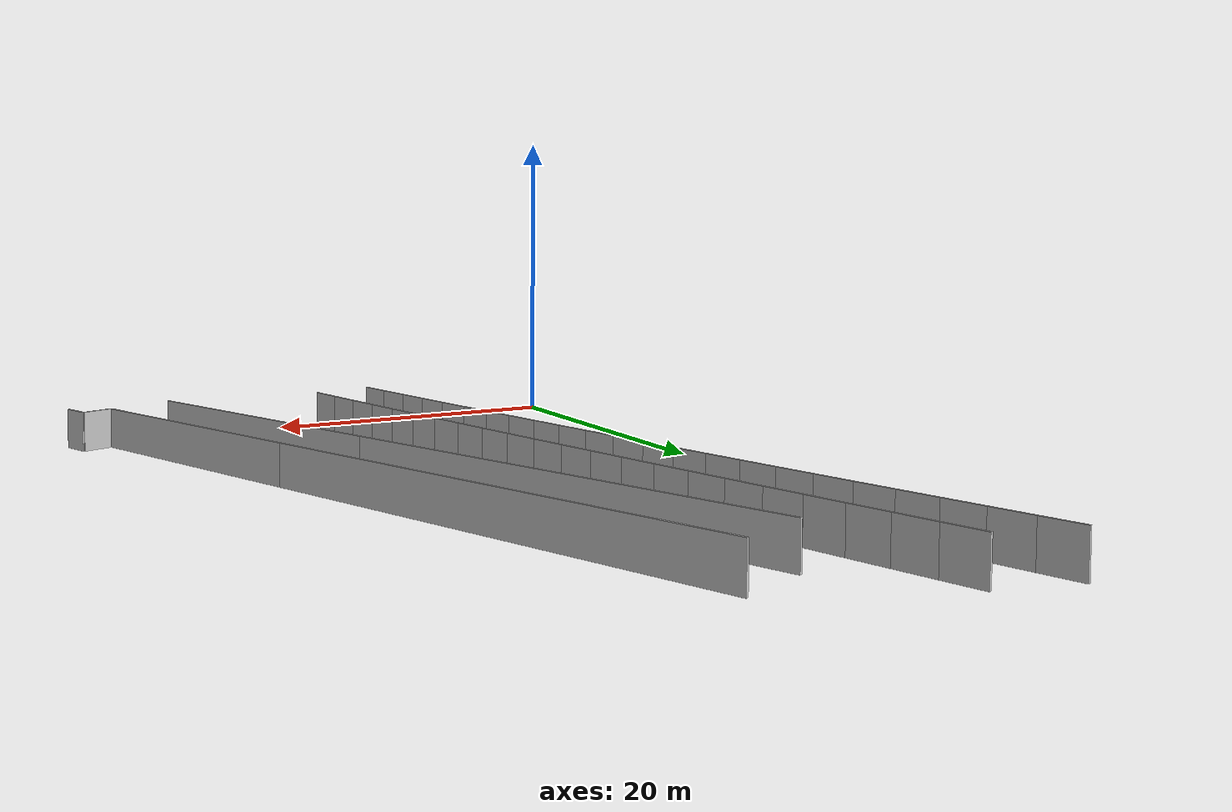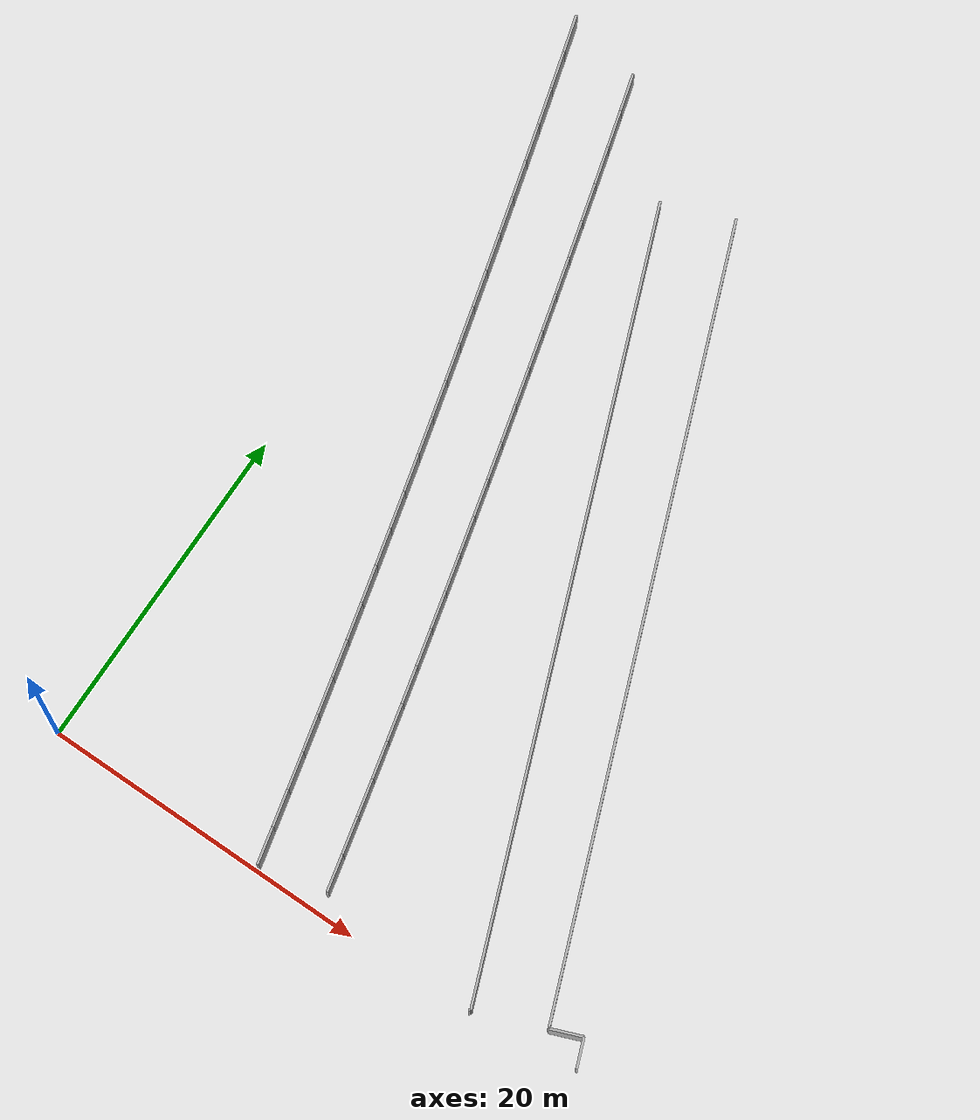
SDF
<?xml version="1.0" ?>
<sdf version="1.6">
  <model name="sps_4629">
    <pose frame="">0 0 0 0 -0 0</pose>
    <static>1</static>
    <self_collide>0</self_collide>
    <allow_auto_disable>0</allow_auto_disable>
    <link name="Wall260">
      <kinematic>0</kinematic>
      <gravity>1</gravity>
      <self_collide>0</self_collide>
      <collision name="collision">
        <geometry>
          <box>
            <size>27.9015 0.15 2.5</size>
          </box>
        </geometry>
        <pose frame="">0 0 0 0 -0 0</pose>
      </collision>
      <visual name="visual">
        <geometry>
          <box>
            <size>27.9015 0.15 2.5</size>
          </box>
        </geometry>
        <pose frame="">0 0 0 0 -0 0</pose>
        <cast_shadows>1</cast_shadows>
        <transparency>0.0</transparency>
      </visual>
      <pose frame="">15.7376 30.8615 1.25 0 0 -1.19328</pose>
    </link>
    <link name="Wall261">
      <kinematic>0</kinematic>
      <gravity>1</gravity>
      <self_collide>0</self_collide>
      <collision name="collision">
        <geometry>
          <box>
            <size>18.9599 0.15 2.5</size>
          </box>
        </geometry>
        <pose frame="">0 0 0 0 -0 0</pose>
      </collision>
      <visual name="visual">
        <geometry>
          <box>
            <size>18.9599 0.15 2.5</size>
          </box>
        </geometry>
        <pose frame="">0 0 0 0 -0 0</pose>
        <cast_shadows>1</cast_shadows>
        <transparency>0.0</transparency>
      </visual>
      <pose frame="">24.3744 9.08067 1.25 0 0 -1.19328</pose>
    </link>
    <link name="Wall387">
      <kinematic>0</kinematic>
      <gravity>1</gravity>
      <self_collide>0</self_collide>
      <collision name="collision">
        <geometry>
          <box>
            <size>1.81498 0.15 2.5</size>
          </box>
        </geometry>
        <pose frame="">0 0 0 0 -0 0</pose>
      </collision>
      <visual name="visual">
        <geometry>
          <box>
            <size>1.81498 0.15 2.5</size>
          </box>
        </geometry>
        <pose frame="">0 0 0 0 -0 0</pose>
        <cast_shadows>1</cast_shadows>
        <transparency>0.0</transparency>
      </visual>
      <pose frame="">34.1348 1.77756 1.25 0 0 -1.19318</pose>
    </link>
    <link name="Wall486">
      <kinematic>0</kinematic>
      <gravity>1</gravity>
      <self_collide>0</self_collide>
      <collision name="collision">
        <geometry>
          <box>
            <size>29.6463 0.15 2.5</size>
          </box>
        </geometry>
        <pose frame="">0 0 0 0 -0 0</pose>
      </collision>
      <visual name="visual">
        <geometry>
          <box>
            <size>29.6463 0.15 2.5</size>
          </box>
        </geometry>
        <pose frame="">0 0 0 0 -0 0</pose>
        <cast_shadows>1</cast_shadows>
        <transparency>0.0</transparency>
      </visual>
      <pose frame="">20.1497 31.6725 1.25 0 0 -1.19329</pose>
    </link>
    <link name="Wall487">
      <kinematic>0</kinematic>
      <gravity>1</gravity>
      <self_collide>0</self_collide>
      <collision name="collision">
        <geometry>
          <box>
            <size>17.2147 0.15 2.5</size>
          </box>
        </geometry>
        <pose frame="">0 0 0 0 -0 0</pose>
      </collision>
      <visual name="visual">
        <geometry>
          <box>
            <size>17.2147 0.15 2.5</size>
          </box>
        </geometry>
        <pose frame="">0 0 0 0 -0 0</pose>
        <cast_shadows>1</cast_shadows>
        <transparency>0.0</transparency>
      </visual>
      <pose frame="">28.7862 9.8918 1.25 0 0 -1.19329</pose>
    </link>
    <link name="Wall586">
      <kinematic>0</kinematic>
      <gravity>1</gravity>
      <self_collide>0</self_collide>
      <collision name="collision">
        <geometry>
          <box>
            <size>1.98101 0.15 2.5</size>
          </box>
        </geometry>
        <pose frame="">0 0 0 0 -0 0</pose>
      </collision>
      <visual name="visual">
        <geometry>
          <box>
            <size>1.98101 0.15 2.5</size>
          </box>
        </geometry>
        <pose frame="">0 0 0 0 -0 0</pose>
        <cast_shadows>1</cast_shadows>
        <transparency>0.0</transparency>
      </visual>
      <pose frame="">32.8796 2.25581 1.25 0 -0 0.377714</pose>
    </link>
    <link name="Wall663">
      <kinematic>0</kinematic>
      <gravity>1</gravity>
      <self_collide>0</self_collide>
      <collision name="collision">
        <geometry>
          <box>
            <size>0.119337 0.15 2.5</size>
          </box>
        </geometry>
        <pose frame="">0 0 0 0 -0 0</pose>
      </collision>
      <visual name="visual">
        <geometry>
          <box>
            <size>0.119337 0.15 2.5</size>
          </box>
        </geometry>
        <pose frame="">0 0 0 0 -0 0</pose>
        <cast_shadows>1</cast_shadows>
        <transparency>0.0</transparency>
      </visual>
      <pose frame="">27.8133 0.246383 1.25 0 -0 0.375473</pose>
    </link>
    <link name="Wall4644">
      <kinematic>0</kinematic>
      <gravity>1</gravity>
      <self_collide>0</self_collide>
      <collision name="collision">
        <geometry>
          <box>
            <size>2.25472 0.15 2.5</size>
          </box>
        </geometry>
        <pose frame="">0 0 0 0 -0 0</pose>
      </collision>
      <visual name="visual">
        <geometry>
          <box>
            <size>2.25472 0.15 2.5</size>
          </box>
        </geometry>
        <pose frame="">0 0 0 0 -0 0</pose>
        <cast_shadows>1</cast_shadows>
        <transparency>0.0</transparency>
      </visual>
      <pose frame="">17.4002 2.1917 1.25 0 -0 1.80097</pose>
    </link>
    <link name="Wall4645">
      <kinematic>0</kinematic>
      <gravity>1</gravity>
      <self_collide>0</self_collide>
      <collision name="collision">
        <geometry>
          <box>
            <size>2.25456 0.15 2.5</size>
          </box>
        </geometry>
        <pose frame="">0 0 0 0 -0 0</pose>
      </collision>
      <visual name="visual">
        <geometry>
          <box>
            <size>2.25456 0.15 2.5</size>
          </box>
        </geometry>
        <pose frame="">0 0 0 0 -0 0</pose>
        <cast_shadows>1</cast_shadows>
        <transparency>0.0</transparency>
      </visual>
      <pose frame="">16.883 4.38621 1.25 0 -0 1.80352</pose>
    </link>
    <link name="Wall4646">
      <kinematic>0</kinematic>
      <gravity>1</gravity>
      <self_collide>0</self_collide>
      <collision name="collision">
        <geometry>
          <box>
            <size>2.25455 0.15 2.5</size>
          </box>
        </geometry>
        <pose frame="">0 0 0 0 -0 0</pose>
      </collision>
      <visual name="visual">
        <geometry>
          <box>
            <size>2.25455 0.15 2.5</size>
          </box>
        </geometry>
        <pose frame="">0 0 0 0 -0 0</pose>
        <cast_shadows>1</cast_shadows>
        <transparency>0.0</transparency>
      </visual>
      <pose frame="">16.3606 6.57939 1.25 0 -0 1.80583</pose>
    </link>
    <link name="Wall4647">
      <kinematic>0</kinematic>
      <gravity>1</gravity>
      <self_collide>0</self_collide>
      <collision name="collision">
        <geometry>
          <box>
            <size>2.25468 0.15 2.5</size>
          </box>
        </geometry>
        <pose frame="">0 0 0 0 -0 0</pose>
      </collision>
      <visual name="visual">
        <geometry>
          <box>
            <size>2.25468 0.15 2.5</size>
          </box>
        </geometry>
        <pose frame="">0 0 0 0 -0 0</pose>
        <cast_shadows>1</cast_shadows>
        <transparency>0.0</transparency>
      </visual>
      <pose frame="">15.8328 8.77138 1.25 0 -0 1.80826</pose>
    </link>
    <link name="Wall4648">
      <kinematic>0</kinematic>
      <gravity>1</gravity>
      <self_collide>0</self_collide>
      <collision name="collision">
        <geometry>
          <box>
            <size>2.25468 0.15 2.5</size>
          </box>
        </geometry>
        <pose frame="">0 0 0 0 -0 0</pose>
      </collision>
      <visual name="visual">
        <geometry>
          <box>
            <size>2.25468 0.15 2.5</size>
          </box>
        </geometry>
        <pose frame="">0 0 0 0 -0 0</pose>
        <cast_shadows>1</cast_shadows>
        <transparency>0.0</transparency>
      </visual>
      <pose frame="">15.2999 10.9622 1.25 0 -0 1.81055</pose>
    </link>
    <link name="Wall4649">
      <kinematic>0</kinematic>
      <gravity>1</gravity>
      <self_collide>0</self_collide>
      <collision name="collision">
        <geometry>
          <box>
            <size>2.25465 0.15 2.5</size>
          </box>
        </geometry>
        <pose frame="">0 0 0 0 -0 0</pose>
      </collision>
      <visual name="visual">
        <geometry>
          <box>
            <size>2.25465 0.15 2.5</size>
          </box>
        </geometry>
        <pose frame="">0 0 0 0 -0 0</pose>
        <cast_shadows>1</cast_shadows>
        <transparency>0.0</transparency>
      </visual>
      <pose frame="">14.7619 13.1517 1.25 0 -0 1.813</pose>
    </link>
    <link name="Wall4650">
      <kinematic>0</kinematic>
      <gravity>1</gravity>
      <self_collide>0</self_collide>
      <collision name="collision">
        <geometry>
          <box>
            <size>2.25445 0.15 2.5</size>
          </box>
        </geometry>
        <pose frame="">0 0 0 0 -0 0</pose>
      </collision>
      <visual name="visual">
        <geometry>
          <box>
            <size>2.25445 0.15 2.5</size>
          </box>
        </geometry>
        <pose frame="">0 0 0 0 -0 0</pose>
        <cast_shadows>1</cast_shadows>
        <transparency>0.0</transparency>
      </visual>
      <pose frame="">14.2186 15.3398 1.25 0 -0 1.81534</pose>
    </link>
    <link name="Wall4651">
      <kinematic>0</kinematic>
      <gravity>1</gravity>
      <self_collide>0</self_collide>
      <collision name="collision">
        <geometry>
          <box>
            <size>2.25475 0.15 2.5</size>
          </box>
        </geometry>
        <pose frame="">0 0 0 0 -0 0</pose>
      </collision>
      <visual name="visual">
        <geometry>
          <box>
            <size>2.25475 0.15 2.5</size>
          </box>
        </geometry>
        <pose frame="">0 0 0 0 -0 0</pose>
        <cast_shadows>1</cast_shadows>
        <transparency>0.0</transparency>
      </visual>
      <pose frame="">13.6702 17.5267 1.25 0 -0 1.81765</pose>
    </link>
    <link name="Wall4652">
      <kinematic>0</kinematic>
      <gravity>1</gravity>
      <self_collide>0</self_collide>
      <collision name="collision">
        <geometry>
          <box>
            <size>2.25455 0.15 2.5</size>
          </box>
        </geometry>
        <pose frame="">0 0 0 0 -0 0</pose>
      </collision>
      <visual name="visual">
        <geometry>
          <box>
            <size>2.25455 0.15 2.5</size>
          </box>
        </geometry>
        <pose frame="">0 0 0 0 -0 0</pose>
        <cast_shadows>1</cast_shadows>
        <transparency>0.0</transparency>
      </visual>
      <pose frame="">13.1165 19.7123 1.25 0 -0 1.82016</pose>
    </link>
    <link name="Wall4653">
      <kinematic>0</kinematic>
      <gravity>1</gravity>
      <self_collide>0</self_collide>
      <collision name="collision">
        <geometry>
          <box>
            <size>2.25461 0.15 2.5</size>
          </box>
        </geometry>
        <pose frame="">0 0 0 0 -0 0</pose>
      </collision>
      <visual name="visual">
        <geometry>
          <box>
            <size>2.25461 0.15 2.5</size>
          </box>
        </geometry>
        <pose frame="">0 0 0 0 -0 0</pose>
        <cast_shadows>1</cast_shadows>
        <transparency>0.0</transparency>
      </visual>
      <pose frame="">12.5576 21.8965 1.25 0 -0 1.82245</pose>
    </link>
    <link name="Wall4654">
      <kinematic>0</kinematic>
      <gravity>1</gravity>
      <self_collide>0</self_collide>
      <collision name="collision">
        <geometry>
          <box>
            <size>2.25478 0.15 2.5</size>
          </box>
        </geometry>
        <pose frame="">0 0 0 0 -0 0</pose>
      </collision>
      <visual name="visual">
        <geometry>
          <box>
            <size>2.25478 0.15 2.5</size>
          </box>
        </geometry>
        <pose frame="">0 0 0 0 -0 0</pose>
        <cast_shadows>1</cast_shadows>
        <transparency>0.0</transparency>
      </visual>
      <pose frame="">11.9935 24.0795 1.25 0 -0 1.82491</pose>
    </link>
    <link name="Wall4655">
      <kinematic>0</kinematic>
      <gravity>1</gravity>
      <self_collide>0</self_collide>
      <collision name="collision">
        <geometry>
          <box>
            <size>2.25456 0.15 2.5</size>
          </box>
        </geometry>
        <pose frame="">0 0 0 0 -0 0</pose>
      </collision>
      <visual name="visual">
        <geometry>
          <box>
            <size>2.25456 0.15 2.5</size>
          </box>
        </geometry>
        <pose frame="">0 0 0 0 -0 0</pose>
        <cast_shadows>1</cast_shadows>
        <transparency>0.0</transparency>
      </visual>
      <pose frame="">11.4242 26.2611 1.25 0 -0 1.82721</pose>
    </link>
    <link name="Wall4656">
      <kinematic>0</kinematic>
      <gravity>1</gravity>
      <self_collide>0</self_collide>
      <collision name="collision">
        <geometry>
          <box>
            <size>2.25448 0.15 2.5</size>
          </box>
        </geometry>
        <pose frame="">0 0 0 0 -0 0</pose>
      </collision>
      <visual name="visual">
        <geometry>
          <box>
            <size>2.25448 0.15 2.5</size>
          </box>
        </geometry>
        <pose frame="">0 0 0 0 -0 0</pose>
        <cast_shadows>1</cast_shadows>
        <transparency>0.0</transparency>
      </visual>
      <pose frame="">10.8498 28.4412 1.25 0 -0 1.82962</pose>
    </link>
    <link name="Wall4657">
      <kinematic>0</kinematic>
      <gravity>1</gravity>
      <self_collide>0</self_collide>
      <collision name="collision">
        <geometry>
          <box>
            <size>2.25455 0.15 2.5</size>
          </box>
        </geometry>
        <pose frame="">0 0 0 0 -0 0</pose>
      </collision>
      <visual name="visual">
        <geometry>
          <box>
            <size>2.25455 0.15 2.5</size>
          </box>
        </geometry>
        <pose frame="">0 0 0 0 -0 0</pose>
        <cast_shadows>1</cast_shadows>
        <transparency>0.0</transparency>
      </visual>
      <pose frame="">10.27 30.6199 1.25 0 -0 1.83216</pose>
    </link>
    <link name="Wall4658">
      <kinematic>0</kinematic>
      <gravity>1</gravity>
      <self_collide>0</self_collide>
      <collision name="collision">
        <geometry>
          <box>
            <size>2.25432 0.15 2.5</size>
          </box>
        </geometry>
        <pose frame="">0 0 0 0 -0 0</pose>
      </collision>
      <visual name="visual">
        <geometry>
          <box>
            <size>2.25432 0.15 2.5</size>
          </box>
        </geometry>
        <pose frame="">0 0 0 0 -0 0</pose>
        <cast_shadows>1</cast_shadows>
        <transparency>0.0</transparency>
      </visual>
      <pose frame="">9.68487 32.7971 1.25 0 -0 1.83449</pose>
    </link>
    <link name="Wall4659">
      <kinematic>0</kinematic>
      <gravity>1</gravity>
      <self_collide>0</self_collide>
      <collision name="collision">
        <geometry>
          <box>
            <size>2.25468 0.15 2.5</size>
          </box>
        </geometry>
        <pose frame="">0 0 0 0 -0 0</pose>
      </collision>
      <visual name="visual">
        <geometry>
          <box>
            <size>2.25468 0.15 2.5</size>
          </box>
        </geometry>
        <pose frame="">0 0 0 0 -0 0</pose>
        <cast_shadows>1</cast_shadows>
        <transparency>0.0</transparency>
      </visual>
      <pose frame="">9.09478 34.973 1.25 0 -0 1.83675</pose>
    </link>
    <link name="Wall4660">
      <kinematic>0</kinematic>
      <gravity>1</gravity>
      <self_collide>0</self_collide>
      <collision name="collision">
        <geometry>
          <box>
            <size>2.25454 0.15 2.5</size>
          </box>
        </geometry>
        <pose frame="">0 0 0 0 -0 0</pose>
      </collision>
      <visual name="visual">
        <geometry>
          <box>
            <size>2.25454 0.15 2.5</size>
          </box>
        </geometry>
        <pose frame="">0 0 0 0 -0 0</pose>
        <cast_shadows>1</cast_shadows>
        <transparency>0.0</transparency>
      </visual>
      <pose frame="">8.49956 37.1476 1.25 0 -0 1.83918</pose>
    </link>
    <link name="Wall4661">
      <kinematic>0</kinematic>
      <gravity>1</gravity>
      <self_collide>0</self_collide>
      <collision name="collision">
        <geometry>
          <box>
            <size>2.25449 0.15 2.5</size>
          </box>
        </geometry>
        <pose frame="">0 0 0 0 -0 0</pose>
      </collision>
      <visual name="visual">
        <geometry>
          <box>
            <size>2.25449 0.15 2.5</size>
          </box>
        </geometry>
        <pose frame="">0 0 0 0 -0 0</pose>
        <cast_shadows>1</cast_shadows>
        <transparency>0.0</transparency>
      </visual>
      <pose frame="">7.89916 39.3207 1.25 0 -0 1.84154</pose>
    </link>
    <link name="Wall4662">
      <kinematic>0</kinematic>
      <gravity>1</gravity>
      <self_collide>0</self_collide>
      <collision name="collision">
        <geometry>
          <box>
            <size>2.25469 0.15 2.5</size>
          </box>
        </geometry>
        <pose frame="">0 0 0 0 -0 0</pose>
      </collision>
      <visual name="visual">
        <geometry>
          <box>
            <size>2.25469 0.15 2.5</size>
          </box>
        </geometry>
        <pose frame="">0 0 0 0 -0 0</pose>
        <cast_shadows>1</cast_shadows>
        <transparency>0.0</transparency>
      </visual>
      <pose frame="">7.29375 41.4925 1.25 0 -0 1.84377</pose>
    </link>
    <link name="Wall4663">
      <kinematic>0</kinematic>
      <gravity>1</gravity>
      <self_collide>0</self_collide>
      <collision name="collision">
        <geometry>
          <box>
            <size>2.25477 0.15 2.5</size>
          </box>
        </geometry>
        <pose frame="">0 0 0 0 -0 0</pose>
      </collision>
      <visual name="visual">
        <geometry>
          <box>
            <size>2.25477 0.15 2.5</size>
          </box>
        </geometry>
        <pose frame="">0 0 0 0 -0 0</pose>
        <cast_shadows>1</cast_shadows>
        <transparency>0.0</transparency>
      </visual>
      <pose frame="">6.68325 43.663 1.25 0 -0 1.8462</pose>
    </link>
    <link name="Wall4664">
      <kinematic>0</kinematic>
      <gravity>1</gravity>
      <self_collide>0</self_collide>
      <collision name="collision">
        <geometry>
          <box>
            <size>2.2545 0.15 2.5</size>
          </box>
        </geometry>
        <pose frame="">0 0 0 0 -0 0</pose>
      </collision>
      <visual name="visual">
        <geometry>
          <box>
            <size>2.2545 0.15 2.5</size>
          </box>
        </geometry>
        <pose frame="">0 0 0 0 -0 0</pose>
        <cast_shadows>1</cast_shadows>
        <transparency>0.0</transparency>
      </visual>
      <pose frame="">6.06747 45.8319 1.25 0 -0 1.84866</pose>
    </link>
    <link name="Wall4665">
      <kinematic>0</kinematic>
      <gravity>1</gravity>
      <self_collide>0</self_collide>
      <collision name="collision">
        <geometry>
          <box>
            <size>2.25471 0.15 2.5</size>
          </box>
        </geometry>
        <pose frame="">0 0 0 0 -0 0</pose>
      </collision>
      <visual name="visual">
        <geometry>
          <box>
            <size>2.25471 0.15 2.5</size>
          </box>
        </geometry>
        <pose frame="">0 0 0 0 -0 0</pose>
        <cast_shadows>1</cast_shadows>
        <transparency>0.0</transparency>
      </visual>
      <pose frame="">5.44656 47.9993 1.25 0 -0 1.85094</pose>
    </link>
    <link name="Wall6369">
      <kinematic>0</kinematic>
      <gravity>1</gravity>
      <self_collide>0</self_collide>
      <collision name="collision">
        <geometry>
          <box>
            <size>2.24468 0.15 2.5</size>
          </box>
        </geometry>
        <pose frame="">0 0 0 0 -0 0</pose>
      </collision>
      <visual name="visual">
        <geometry>
          <box>
            <size>2.24468 0.15 2.5</size>
          </box>
        </geometry>
        <pose frame="">0 0 0 0 -0 0</pose>
        <cast_shadows>1</cast_shadows>
        <transparency>0.0</transparency>
      </visual>
      <pose frame="">13.3704 1.24638 1.25 0 -0 1.80121</pose>
    </link>
    <link name="Wall6370">
      <kinematic>0</kinematic>
      <gravity>1</gravity>
      <self_collide>0</self_collide>
      <collision name="collision">
        <geometry>
          <box>
            <size>2.24489 0.15 2.5</size>
          </box>
        </geometry>
        <pose frame="">0 0 0 0 -0 0</pose>
      </collision>
      <visual name="visual">
        <geometry>
          <box>
            <size>2.24489 0.15 2.5</size>
          </box>
        </geometry>
        <pose frame="">0 0 0 0 -0 0</pose>
        <cast_shadows>1</cast_shadows>
        <transparency>0.0</transparency>
      </visual>
      <pose frame="">12.8553 3.43129 1.25 0 -0 1.80336</pose>
    </link>
    <link name="Wall6371">
      <kinematic>0</kinematic>
      <gravity>1</gravity>
      <self_collide>0</self_collide>
      <collision name="collision">
        <geometry>
          <box>
            <size>2.24476 0.15 2.5</size>
          </box>
        </geometry>
        <pose frame="">0 0 0 0 -0 0</pose>
      </collision>
      <visual name="visual">
        <geometry>
          <box>
            <size>2.24476 0.15 2.5</size>
          </box>
        </geometry>
        <pose frame="">0 0 0 0 -0 0</pose>
        <cast_shadows>1</cast_shadows>
        <transparency>0.0</transparency>
      </visual>
      <pose frame="">12.3351 5.615 1.25 0 -0 1.80595</pose>
    </link>
    <link name="Wall6372">
      <kinematic>0</kinematic>
      <gravity>1</gravity>
      <self_collide>0</self_collide>
      <collision name="collision">
        <geometry>
          <box>
            <size>2.24475 0.15 2.5</size>
          </box>
        </geometry>
        <pose frame="">0 0 0 0 -0 0</pose>
      </collision>
      <visual name="visual">
        <geometry>
          <box>
            <size>2.24475 0.15 2.5</size>
          </box>
        </geometry>
        <pose frame="">0 0 0 0 -0 0</pose>
        <cast_shadows>1</cast_shadows>
        <transparency>0.0</transparency>
      </visual>
      <pose frame="">11.8097 7.79741 1.25 0 -0 1.80813</pose>
    </link>
    <link name="Wall6373">
      <kinematic>0</kinematic>
      <gravity>1</gravity>
      <self_collide>0</self_collide>
      <collision name="collision">
        <geometry>
          <box>
            <size>2.24461 0.15 2.5</size>
          </box>
        </geometry>
        <pose frame="">0 0 0 0 -0 0</pose>
      </collision>
      <visual name="visual">
        <geometry>
          <box>
            <size>2.24461 0.15 2.5</size>
          </box>
        </geometry>
        <pose frame="">0 0 0 0 -0 0</pose>
        <cast_shadows>1</cast_shadows>
        <transparency>0.0</transparency>
      </visual>
      <pose frame="">11.2793 9.9785 1.25 0 -0 1.81064</pose>
    </link>
    <link name="Wall6374">
      <kinematic>0</kinematic>
      <gravity>1</gravity>
      <self_collide>0</self_collide>
      <collision name="collision">
        <geometry>
          <box>
            <size>2.24496 0.15 2.5</size>
          </box>
        </geometry>
        <pose frame="">0 0 0 0 -0 0</pose>
      </collision>
      <visual name="visual">
        <geometry>
          <box>
            <size>2.24496 0.15 2.5</size>
          </box>
        </geometry>
        <pose frame="">0 0 0 0 -0 0</pose>
        <cast_shadows>1</cast_shadows>
        <transparency>0.0</transparency>
      </visual>
      <pose frame="">10.7435 12.1584 1.25 0 -0 1.81298</pose>
    </link>
    <link name="Wall6375">
      <kinematic>0</kinematic>
      <gravity>1</gravity>
      <self_collide>0</self_collide>
      <collision name="collision">
        <geometry>
          <box>
            <size>2.24467 0.15 2.5</size>
          </box>
        </geometry>
        <pose frame="">0 0 0 0 -0 0</pose>
      </collision>
      <visual name="visual">
        <geometry>
          <box>
            <size>2.24467 0.15 2.5</size>
          </box>
        </geometry>
        <pose frame="">0 0 0 0 -0 0</pose>
        <cast_shadows>1</cast_shadows>
        <transparency>0.0</transparency>
      </visual>
      <pose frame="">10.2024 14.337 1.25 0 -0 1.8155</pose>
    </link>
    <link name="Wall6376">
      <kinematic>0</kinematic>
      <gravity>1</gravity>
      <self_collide>0</self_collide>
      <collision name="collision">
        <geometry>
          <box>
            <size>2.24482 0.15 2.5</size>
          </box>
        </geometry>
        <pose frame="">0 0 0 0 -0 0</pose>
      </collision>
      <visual name="visual">
        <geometry>
          <box>
            <size>2.24482 0.15 2.5</size>
          </box>
        </geometry>
        <pose frame="">0 0 0 0 -0 0</pose>
        <cast_shadows>1</cast_shadows>
        <transparency>0.0</transparency>
      </visual>
      <pose frame="">9.65615 16.5143 1.25 0 -0 1.81767</pose>
    </link>
    <link name="Wall6377">
      <kinematic>0</kinematic>
      <gravity>1</gravity>
      <self_collide>0</self_collide>
      <collision name="collision">
        <geometry>
          <box>
            <size>2.24485 0.15 2.5</size>
          </box>
        </geometry>
        <pose frame="">0 0 0 0 -0 0</pose>
      </collision>
      <visual name="visual">
        <geometry>
          <box>
            <size>2.24485 0.15 2.5</size>
          </box>
        </geometry>
        <pose frame="">0 0 0 0 -0 0</pose>
        <cast_shadows>1</cast_shadows>
        <transparency>0.0</transparency>
      </visual>
      <pose frame="">9.10485 18.6904 1.25 0 -0 1.82017</pose>
    </link>
    <link name="Wall6378">
      <kinematic>0</kinematic>
      <gravity>1</gravity>
      <self_collide>0</self_collide>
      <collision name="collision">
        <geometry>
          <box>
            <size>2.24467 0.15 2.5</size>
          </box>
        </geometry>
        <pose frame="">0 0 0 0 -0 0</pose>
      </collision>
      <visual name="visual">
        <geometry>
          <box>
            <size>2.24467 0.15 2.5</size>
          </box>
        </geometry>
        <pose frame="">0 0 0 0 -0 0</pose>
        <cast_shadows>1</cast_shadows>
        <transparency>0.0</transparency>
      </visual>
      <pose frame="">8.54845 20.8651 1.25 0 -0 1.82238</pose>
    </link>
    <link name="Wall6379">
      <kinematic>0</kinematic>
      <gravity>1</gravity>
      <self_collide>0</self_collide>
      <collision name="collision">
        <geometry>
          <box>
            <size>2.24485 0.15 2.5</size>
          </box>
        </geometry>
        <pose frame="">0 0 0 0 -0 0</pose>
      </collision>
      <visual name="visual">
        <geometry>
          <box>
            <size>2.24485 0.15 2.5</size>
          </box>
        </geometry>
        <pose frame="">0 0 0 0 -0 0</pose>
        <cast_shadows>1</cast_shadows>
        <transparency>0.0</transparency>
      </visual>
      <pose frame="">7.98696 23.0385 1.25 0 -0 1.82486</pose>
    </link>
    <link name="Wall6380">
      <kinematic>0</kinematic>
      <gravity>1</gravity>
      <self_collide>0</self_collide>
      <collision name="collision">
        <geometry>
          <box>
            <size>2.2448 0.15 2.5</size>
          </box>
        </geometry>
        <pose frame="">0 0 0 0 -0 0</pose>
      </collision>
      <visual name="visual">
        <geometry>
          <box>
            <size>2.2448 0.15 2.5</size>
          </box>
        </geometry>
        <pose frame="">0 0 0 0 -0 0</pose>
        <cast_shadows>1</cast_shadows>
        <transparency>0.0</transparency>
      </visual>
      <pose frame="">7.42016 25.2106 1.25 0 -0 1.82725</pose>
    </link>
    <link name="Wall6381">
      <kinematic>0</kinematic>
      <gravity>1</gravity>
      <self_collide>0</self_collide>
      <collision name="collision">
        <geometry>
          <box>
            <size>2.24459 0.15 2.5</size>
          </box>
        </geometry>
        <pose frame="">0 0 0 0 -0 0</pose>
      </collision>
      <visual name="visual">
        <geometry>
          <box>
            <size>2.24459 0.15 2.5</size>
          </box>
        </geometry>
        <pose frame="">0 0 0 0 -0 0</pose>
        <cast_shadows>1</cast_shadows>
        <transparency>0.0</transparency>
      </visual>
      <pose frame="">6.84817 27.3812 1.25 0 -0 1.82966</pose>
    </link>
    <link name="Wall6382">
      <kinematic>0</kinematic>
      <gravity>1</gravity>
      <self_collide>0</self_collide>
      <collision name="collision">
        <geometry>
          <box>
            <size>2.24493 0.15 2.5</size>
          </box>
        </geometry>
        <pose frame="">0 0 0 0 -0 0</pose>
      </collision>
      <visual name="visual">
        <geometry>
          <box>
            <size>2.24493 0.15 2.5</size>
          </box>
        </geometry>
        <pose frame="">0 0 0 0 -0 0</pose>
        <cast_shadows>1</cast_shadows>
        <transparency>0.0</transparency>
      </visual>
      <pose frame="">6.27108 29.5505 1.25 0 -0 1.83193</pose>
    </link>
    <link name="Wall6383">
      <kinematic>0</kinematic>
      <gravity>1</gravity>
      <self_collide>0</self_collide>
      <collision name="collision">
        <geometry>
          <box>
            <size>2.24416 0.15 2.5</size>
          </box>
        </geometry>
        <pose frame="">0 0 0 0 -0 0</pose>
      </collision>
      <visual name="visual">
        <geometry>
          <box>
            <size>2.24416 0.15 2.5</size>
          </box>
        </geometry>
        <pose frame="">0 0 0 0 -0 0</pose>
        <cast_shadows>1</cast_shadows>
        <transparency>0.0</transparency>
      </visual>
      <pose frame="">5.68877 31.7182 1.25 0 -0 1.83453</pose>
    </link>
    <link name="Wall6384">
      <kinematic>0</kinematic>
      <gravity>1</gravity>
      <self_collide>0</self_collide>
      <collision name="collision">
        <geometry>
          <box>
            <size>2.24481 0.15 2.5</size>
          </box>
        </geometry>
        <pose frame="">0 0 0 0 -0 0</pose>
      </collision>
      <visual name="visual">
        <geometry>
          <box>
            <size>2.24481 0.15 2.5</size>
          </box>
        </geometry>
        <pose frame="">0 0 0 0 -0 0</pose>
        <cast_shadows>1</cast_shadows>
        <transparency>0.0</transparency>
      </visual>
      <pose frame="">5.10116 33.8844 1.25 0 -0 1.83685</pose>
    </link>
    <link name="Wall6385">
      <kinematic>0</kinematic>
      <gravity>1</gravity>
      <self_collide>0</self_collide>
      <collision name="collision">
        <geometry>
          <box>
            <size>2.24496 0.15 2.5</size>
          </box>
        </geometry>
        <pose frame="">0 0 0 0 -0 0</pose>
      </collision>
      <visual name="visual">
        <geometry>
          <box>
            <size>2.24496 0.15 2.5</size>
          </box>
        </geometry>
        <pose frame="">0 0 0 0 -0 0</pose>
        <cast_shadows>1</cast_shadows>
        <transparency>0.0</transparency>
      </visual>
      <pose frame="">4.50845 36.0496 1.25 0 -0 1.83914</pose>
    </link>
    <link name="Wall6386">
      <kinematic>0</kinematic>
      <gravity>1</gravity>
      <self_collide>0</self_collide>
      <collision name="collision">
        <geometry>
          <box>
            <size>2.24468 0.15 2.5</size>
          </box>
        </geometry>
        <pose frame="">0 0 0 0 -0 0</pose>
      </collision>
      <visual name="visual">
        <geometry>
          <box>
            <size>2.24468 0.15 2.5</size>
          </box>
        </geometry>
        <pose frame="">0 0 0 0 -0 0</pose>
        <cast_shadows>1</cast_shadows>
        <transparency>0.0</transparency>
      </visual>
      <pose frame="">3.91076 38.2134 1.25 0 -0 1.84146</pose>
    </link>
    <link name="Wall6387">
      <kinematic>0</kinematic>
      <gravity>1</gravity>
      <self_collide>0</self_collide>
      <collision name="collision">
        <geometry>
          <box>
            <size>2.24498 0.15 2.5</size>
          </box>
        </geometry>
        <pose frame="">0 0 0 0 -0 0</pose>
      </collision>
      <visual name="visual">
        <geometry>
          <box>
            <size>2.24498 0.15 2.5</size>
          </box>
        </geometry>
        <pose frame="">0 0 0 0 -0 0</pose>
        <cast_shadows>1</cast_shadows>
        <transparency>0.0</transparency>
      </visual>
      <pose frame="">3.30798 40.3758 1.25 0 -0 1.84385</pose>
    </link>
    <link name="Wall6388">
      <kinematic>0</kinematic>
      <gravity>1</gravity>
      <self_collide>0</self_collide>
      <collision name="collision">
        <geometry>
          <box>
            <size>2.24463 0.15 2.5</size>
          </box>
        </geometry>
        <pose frame="">0 0 0 0 -0 0</pose>
      </collision>
      <visual name="visual">
        <geometry>
          <box>
            <size>2.24463 0.15 2.5</size>
          </box>
        </geometry>
        <pose frame="">0 0 0 0 -0 0</pose>
        <cast_shadows>1</cast_shadows>
        <transparency>0.0</transparency>
      </visual>
      <pose frame="">2.70006 42.5367 1.25 0 -0 1.84621</pose>
    </link>
    <link name="Wall6389">
      <kinematic>0</kinematic>
      <gravity>1</gravity>
      <self_collide>0</self_collide>
      <collision name="collision">
        <geometry>
          <box>
            <size>2.24469 0.15 2.5</size>
          </box>
        </geometry>
        <pose frame="">0 0 0 0 -0 0</pose>
      </collision>
      <visual name="visual">
        <geometry>
          <box>
            <size>2.24469 0.15 2.5</size>
          </box>
        </geometry>
        <pose frame="">0 0 0 0 -0 0</pose>
        <cast_shadows>1</cast_shadows>
        <transparency>0.0</transparency>
      </visual>
      <pose frame="">2.08697 44.696 1.25 0 -0 1.84869</pose>
    </link>
    <link name="Wall6390">
      <kinematic>0</kinematic>
      <gravity>1</gravity>
      <self_collide>0</self_collide>
      <collision name="collision">
        <geometry>
          <box>
            <size>2.24479 0.15 2.5</size>
          </box>
        </geometry>
        <pose frame="">0 0 0 0 -0 0</pose>
      </collision>
      <visual name="visual">
        <geometry>
          <box>
            <size>2.24479 0.15 2.5</size>
          </box>
        </geometry>
        <pose frame="">0 0 0 0 -0 0</pose>
        <cast_shadows>1</cast_shadows>
        <transparency>0.0</transparency>
      </visual>
      <pose frame="">1.46865 46.8539 1.25 0 -0 1.85102</pose>
    </link>
    <link name="Wall6391">
      <kinematic>0</kinematic>
      <gravity>1</gravity>
      <self_collide>0</self_collide>
      <collision name="collision">
        <geometry>
          <box>
            <size>2.24476 0.15 2.5</size>
          </box>
        </geometry>
        <pose frame="">0 0 0 0 -0 0</pose>
      </collision>
      <visual name="visual">
        <geometry>
          <box>
            <size>2.24476 0.15 2.5</size>
          </box>
        </geometry>
        <pose frame="">0 0 0 0 -0 0</pose>
        <cast_shadows>1</cast_shadows>
        <transparency>0.0</transparency>
      </visual>
      <pose frame="">0.845329 49.0104 1.25 0 -0 1.85332</pose>
    </link>
  </model>
</sdf>
